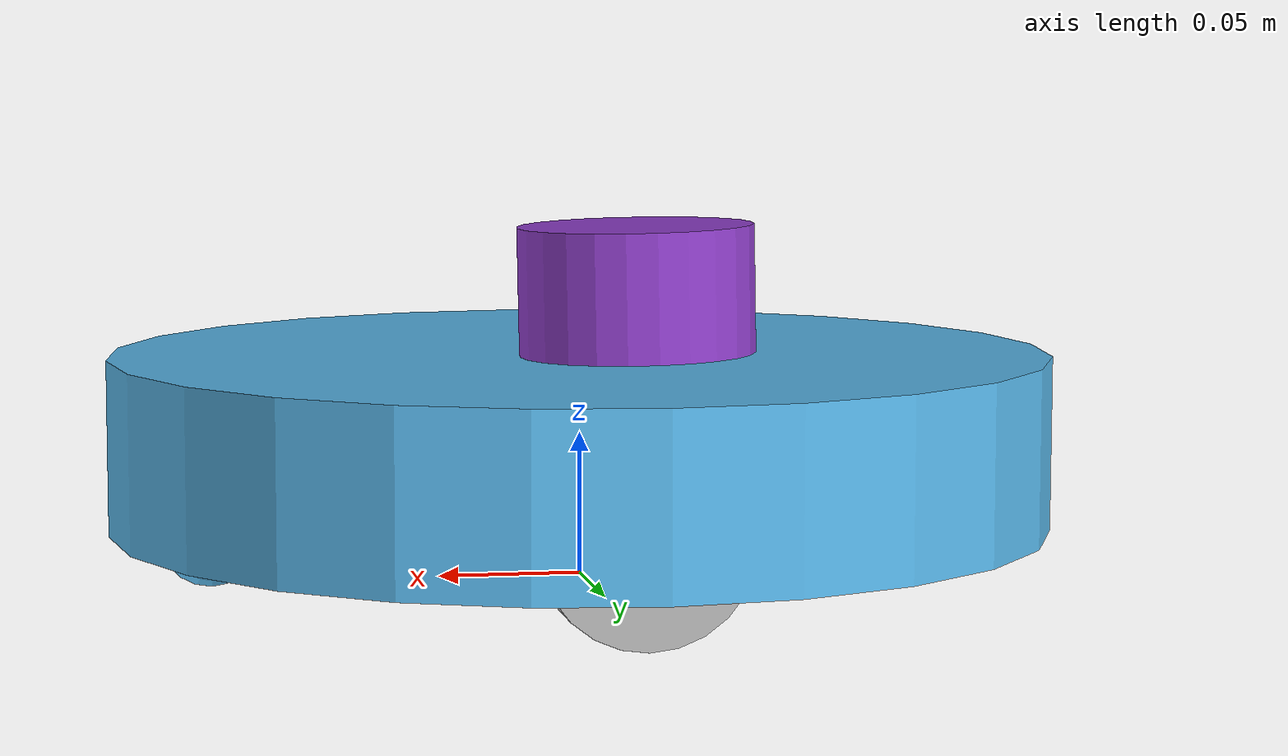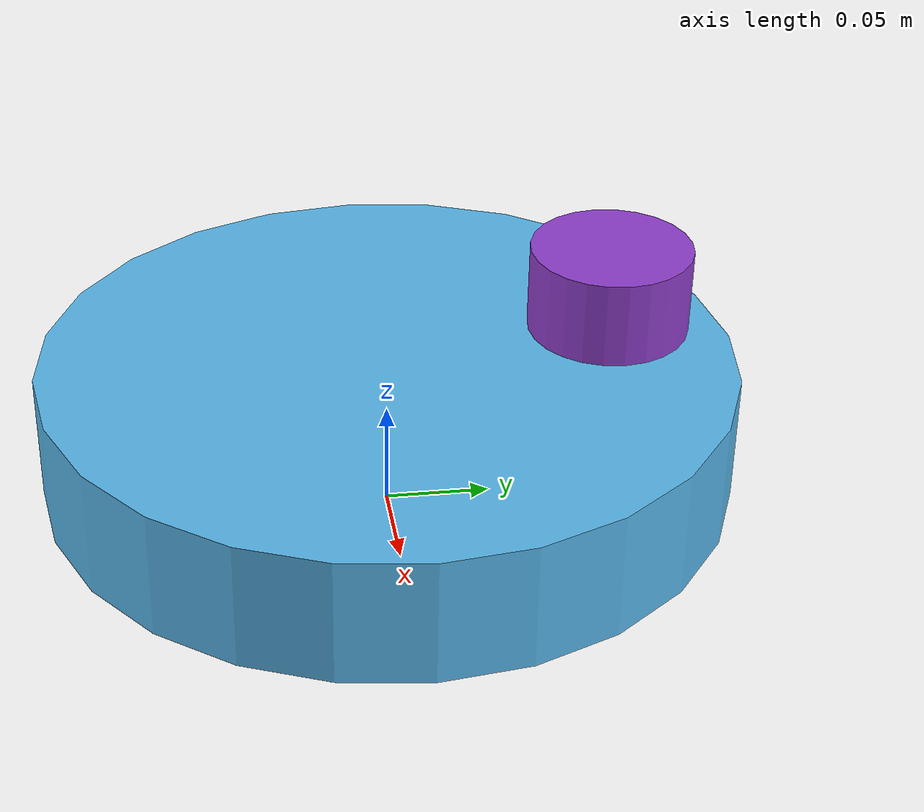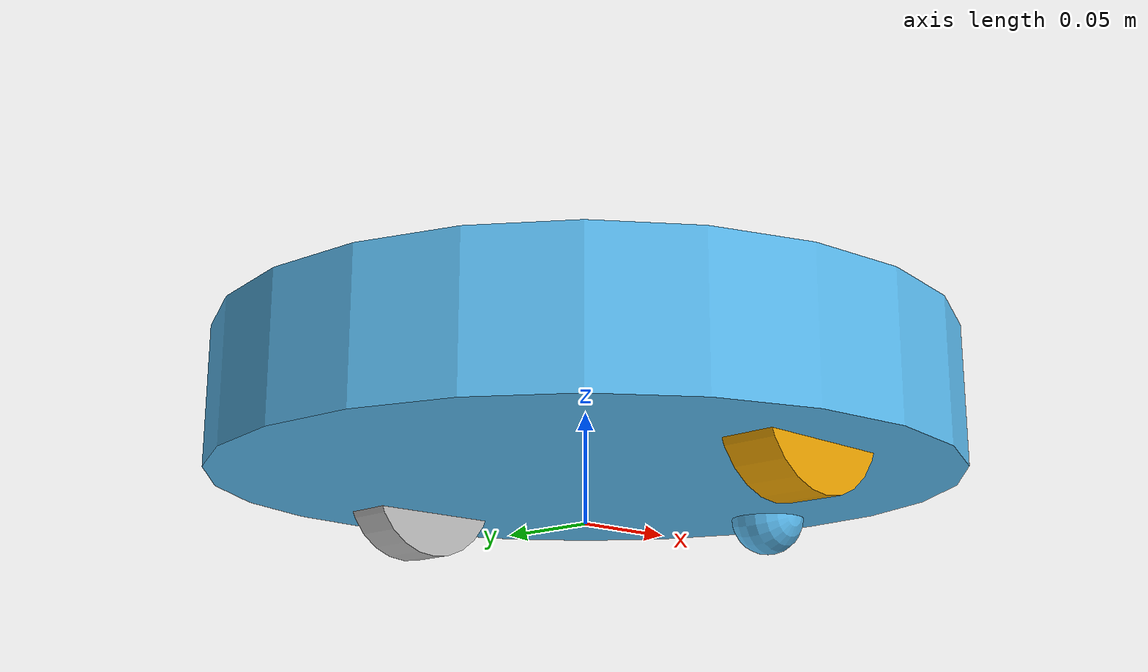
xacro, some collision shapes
<?xml version="1.0" ?>
<robot name="create_2" xmlns:xacro="http://ros.org/wiki/xacro">
  <xacro:include filename="$(find tfg_roomba)/urdf/create_base.urdf.xacro" />
  <xacro:include filename="$(find tfg_roomba)/urdf/create_2_gazebo.urdf.xacro" />

  <xacro:create_base wheel_separation="0.235" base_diameter="0.3485">
    <mesh filename="package://ca_description/meshes/create_2.dae" />
  </xacro:create_base>

  <xacro:include filename="$(find tfg_roomba)/urdf/materials.xacro" />

  <xacro:property name="base_height" value="0.083"/>
  <xacro:property name="lidar_radius" value="0.038"/>
  <xacro:property name="lidar_heigth" value="0.041"/>
  <xacro:property name="lidar_offset_y" value="0.105"/>

  <joint name="lidar_joint" type="fixed">
    <origin xyz="0 ${lidar_offset_y} ${base_height/2+lidar_heigth+0.01}" rpy="0 -0.02 3.141592"/>
    <parent link="base_link"/>
    <child link="lidar"/>
  </joint>

  <link name="lidar">
    <inertial>
      <origin xyz="0 0 0" rpy="0 0 0"/>
      <mass value="0.05"/>
      <inertia ixx="0.0001" ixy="0.0" ixz="0.0"
               iyy="0.0001" iyz="0.0" izz="0.0001"/>
    </inertial>
    <visual>
      <origin xyz="0 0 0" rpy="0 0 0"/>
      <geometry>
        <cylinder radius="${lidar_radius}" length="${lidar_heigth}"/>
      </geometry>
      <material name="purple"/>
    </visual>
    <collision>
      <origin xyz="0 0 0" rpy="0 0 0"/>
      <geometry>
        <cylinder radius="${lidar_radius}" length="${lidar_heigth}"/>
      </geometry>
    </collision>
  </link>
</robot>

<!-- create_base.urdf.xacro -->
<robot xmlns:xacro="http://ros.org/wiki/xacro">
  <xacro:property name="PI" value="3.1415926535897931" />

  <xacro:macro name="create_wheel" params="prefix y_offset wheel_radius wheel_width">
    <link name="${prefix}_wheel_link">
    <inertial>
      <origin xyz="0 0 0" />
      <mass value="0.01" />
      <inertia ixx="0.001" ixy="0.0" ixz="0.0" iyy="0.001" iyz="0.0" izz="0.001" />
    </inertial>

    <visual>
      <origin xyz="0 0 0" rpy="0 ${PI/2} ${PI/2}" />
      <geometry>
        <cylinder radius="${wheel_radius}" length="${wheel_width}" />
      </geometry>
    </visual>

    <collision>
      <origin xyz="0 0 0" rpy="0 ${PI/2} ${PI/2}" />
      <geometry>
        <cylinder radius="${wheel_radius}" length="${wheel_width}" />
      </geometry>
    </collision>
    </link>

   <joint name="${prefix}_wheel_joint" type="continuous">
      <origin xyz="0 ${y_offset} 0.015" rpy="0 0 0" />
      <parent link="base_link" />
      <child link="${prefix}_wheel_link" />
      <axis xyz="0 1 0" />
      <dynamics damping="0.1"/>
    </joint>
  </xacro:macro>

  <xacro:macro name="create_base" params="diffdrive_update_rate:=40 wheel_separation wheel_radius:=0.036 wheel_width:=0.024 wheel_torque:=1.0 wheel_accel:=1.8 mass_kg:=3.5 base_diameter *mesh">
    <xacro:include filename="$(find tfg_roomba)/urdf/create_base_gazebo.urdf.xacro" />

    <link name="base_footprint">
    <visual>
      <origin xyz="0 0 0" rpy="0 0 0" />
      <geometry>
        <box size="0.001 0.001 0.001" />
      </geometry>
      <material name="Green" />
    </visual>

    <collision>
      <origin xyz="0 0 0.017" rpy="0 0 0" />
      <geometry>
        <box size="0.001 0.001 0.001" />
      </geometry>
    </collision>
    </link>

    <link name="base_link">
    <inertial>
      <mass value="2" />
      <origin xyz="0 0 0.0" />
      <inertia ixx="0.01" ixy="0.0" ixz="0.0" iyy="0.01" iyz="0.0" izz="0.5" />
    </inertial>

    <visual>
      <origin xyz=" 0 0 0.0308" rpy="0 0 0" />
      <geometry>
        <xacro:insert_block name="mesh" />
      </geometry>
    </visual>

    <collision>
      <origin xyz="0.0 0.0 0.0308" rpy="0 0 0" />
      <geometry>
        <cylinder length="0.0611632" radius="0.16495" />
      </geometry>
    </collision>
    </link>

    <link name="wall_sensor_link">
    <inertial>
      <mass value="0.01" />
      <origin xyz="0 0 0" />
      <inertia ixx="0.001" ixy="0.0" ixz="0.0" iyy="0.001" iyz="0.0" izz="0.001" />
    </inertial>
    </link>

    <link name="left_cliff_sensor_link">
    <inertial>
      <mass value="0.01" />
      <origin xyz="0 0 0" />
      <inertia ixx="0.001" ixy="0.0" ixz="0.0" iyy="0.001" iyz="0.0" izz="0.001" />
    </inertial>
    </link>

    <link name="right_cliff_sensor_link">
    <inertial>
      <mass value="0.01" />
      <origin xyz="0 0 0" />
      <inertia ixx="0.001" ixy="0.0" ixz="0.0" iyy="0.001" iyz="0.0" izz="0.001" />
    </inertial>
    </link>

    <link name="leftfront_cliff_sensor_link">
    <inertial>
      <mass value="0.01" />
      <origin xyz="0 0 0" />
      <inertia ixx="1.0" ixy="0.0" ixz="0.0" iyy="0.01" iyz="0.0" izz="0.01" />
    </inertial>
    </link>

    <link name="rightfront_cliff_sensor_link">
    <inertial>
      <mass value="0.01" />
      <origin xyz="0 0 0" />
      <inertia ixx="0.001" ixy="0.0" ixz="0.0" iyy="0.001" iyz="0.0" izz="0.001" />
    </inertial>
    </link>

    <joint name="base_footprint_joint" type="fixed">
      <origin xyz="0 0 0.017" rpy="0 0 0" />
      <parent link="base_footprint" />
      <child link="base_link" />
    </joint>

    <joint name="base_wall_sensor_joint" type="fixed">
      <origin xyz="0.09 -0.120 0.042" rpy="0 0 -1.0" />
      <parent link="base_link" />
      <child link="wall_sensor_link" />
    </joint>

    <joint name="base_left_cliff_sensor_joint" type="fixed">
      <origin xyz="0.07 0.14 0.01" rpy="0 ${PI/2} 0" />
      <parent link="base_link" />
      <child link="left_cliff_sensor_link" />
    </joint>

    <joint name="base_right_cliff_sensor_joint" type="fixed">
      <origin xyz="0.07 -0.14 0.01" rpy="0 ${PI/2} 0" />
      <parent link="base_link" />
      <child link="right_cliff_sensor_link" />
    </joint>

    <joint name="base_leftfront_cliff_sensor_joint" type="fixed">
      <origin xyz="0.15 0.04 0.01" rpy="0 ${PI/2} 0" />
      <parent link="base_link" />
      <child link="leftfront_cliff_sensor_link" />
    </joint>

    <joint name="base_rightfront_cliff_sensor_joint" type="fixed">
      <origin xyz="0.15 -0.04 0.01" rpy="0 ${PI/2} 0" />
      <parent link="base_link" />
      <child link="rightfront_cliff_sensor_link" />
    </joint>

    <xacro:create_wheel prefix="left" y_offset="${wheel_separation / 2}" wheel_radius="${wheel_radius}" wheel_width="${wheel_width}"/>
    <xacro:create_wheel prefix="right" y_offset="${wheel_separation / -2}" wheel_radius="${wheel_radius}" wheel_width="${wheel_width}"/>

    <link name="front_wheel_link">
    <inertial>
      <origin xyz="0 0 0" />
      <mass value="0.5" />
      <inertia ixx="0.001" ixy="0.0" ixz="0.0" iyy="0.001" iyz="0.0" izz="0.001" />
    </inertial>

    <visual>
      <origin xyz="0 0 0" rpy="0 ${PI/2} ${PI/2}" />
      <geometry>
        <sphere radius="0.018" />
      </geometry>
    </visual>

    <collision>
      <origin xyz="0 0 0" rpy="0 ${PI/2} ${PI/2}" />
      <geometry>
        <sphere radius="0.018" />
      </geometry>
    </collision>
    </link>

    <!-- fixed because there's no transmission -->
    <joint name="front_castor_joint" type="fixed">
      <origin xyz="0.13 0 0.0" rpy="0 0 0" />
      <parent link="base_link" />
      <child link="front_wheel_link" />
      <axis xyz="0 1 0" />
    </joint>

    <joint name="gyro_joint" type="fixed">
      <axis xyz="0 1 0" />
      <origin xyz="0 0 0.04" rpy="0 0 0" />
      <parent link="base_link" />
      <child link="gyro_link" />
    </joint>
    <link name="gyro_link">
    <inertial>
      <mass value="0.001" />
      <origin xyz="0 0 0" rpy="0 0 0" />
      <inertia ixx="0.0001" ixy="0" ixz="0" iyy="0.000001" iyz="0" izz="0.0001" />
    </inertial>
    </link>

    <!-- Simulation sensors -->
    <xacro:sim_create_base/>
    <xacro:sim_create_wall_sensor/>
    <xacro:sim_create_cliff_sensors/>
    <xacro:sim_imu/>
  </xacro:macro>
</robot>

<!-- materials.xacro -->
<robot>

  <material name="black">
    <color rgba="0.0 0.0 0.0 1.0"/>
  </material>

  <material name="blue">
    <color rgba="0.0 0.0 0.8 1.0"/>
  </material>

  <material name="green">
    <color rgba="0.0 0.8 0.0 1.0"/>
  </material>

  <material name="green_transparent">
    <color rgba="0.0 0.8 0.0 0.75"/>
  </material>

  <material name="grey">
    <color rgba="0.2 0.2 0.2 1.0"/>
  </material>

  <material name="orange">
    <color rgba="${255/255} ${108/255} ${10/255} 1.0"/>
  </material>

  <material name="orange_transparent">
    <color rgba="${255/255} ${108/255} ${10/255} 0.75"/>
  </material>

  <material name="brown">
    <color rgba="${222/255} ${207/255} ${195/255} 1.0"/>
  </material>

  <material name="red">
    <color rgba="0.8 0.0 0.0 1.0"/>
  </material>

  <material name="white">
    <color rgba="1.0 1.0 1.0 1.0"/>
  </material>

  <material name="purple">
    <color rgba="${143/255} ${62/255} ${203/255} 1.0"/>
  </material>

</robot>
